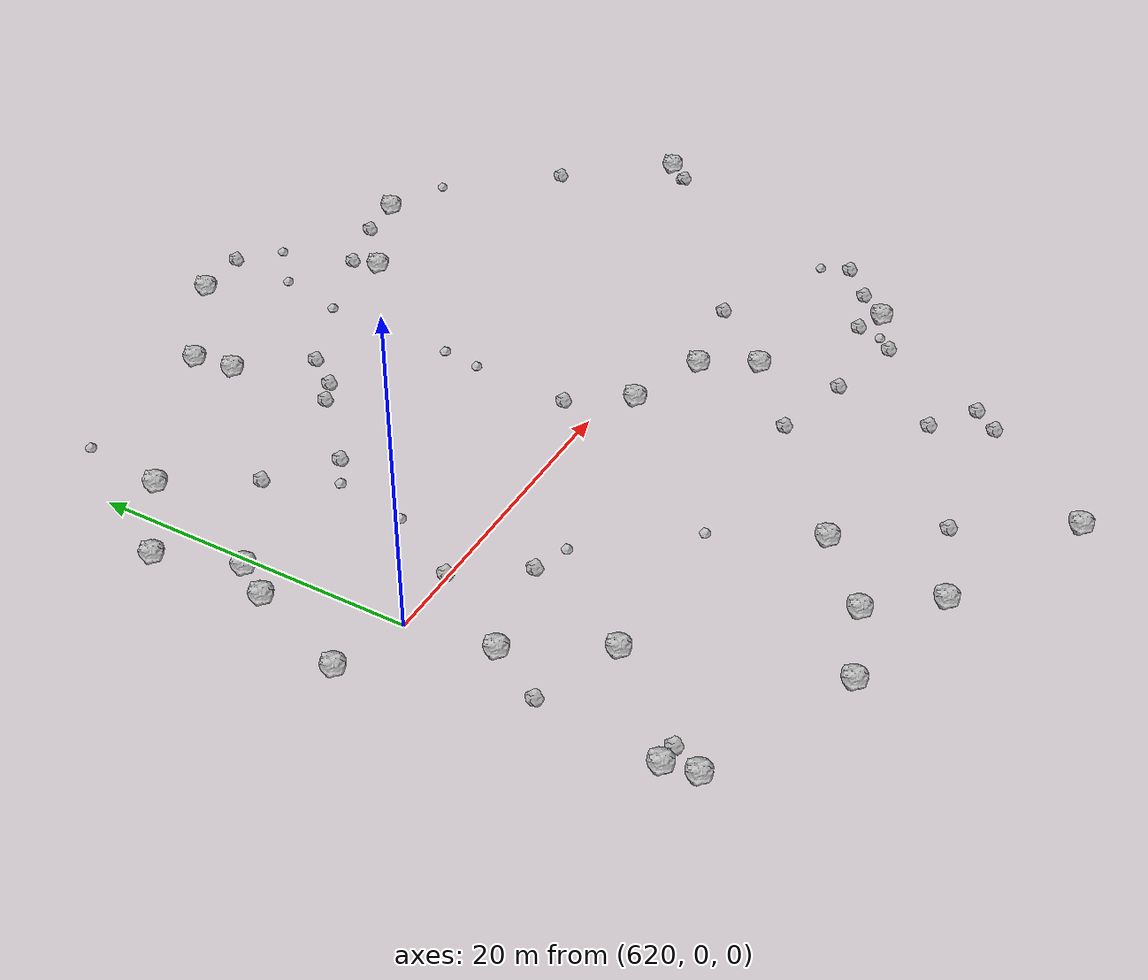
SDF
<sdf version="1.6">
 <world name="default">
  <include><uri>model://sun</uri></include>
  <model name="rock1_16_3">
   <include><uri>model://rock1</uri><pose>653.8089278316353 23.33801840332123 0.5 0 0 0</pose></include>
  </model>
  <model name="rock1_16_4">
   <include><uri>model://rock1</uri><pose>632.9101841639433 -20.504685563201527 0.5 0 0 0</pose></include>
  </model>
  <model name="rock1_16_5">
   <include><uri>model://rock1</uri><pose>637.2851312080411 -16.72430555223564 0.5 0 0 0</pose></include>
  </model>
  <model name="rock1_16_6">
   <include><uri>model://rock1</uri><pose>615.5434850810478 1.347826885919872 0.5 0 0 0</pose></include>
  </model>
  <model name="rock1_16_7">
   <include><uri>model://rock1</uri><pose>633.1457018163671 24.163340697960045 0.5 0 0 0</pose></include>
  </model>
  <model name="rock1_16_8">
   <include><uri>model://rock1</uri><pose>622.4728607712185 18.603124477518655 0.5 0 0 0</pose></include>
  </model>
  <model name="rock1_16_9">
   <include><uri>model://rock1</uri><pose>668.3151160082384 8.92204401249532 0.5 0 0 0</pose></include>
  </model>
  <model name="rock1_16_10">
   <include><uri>model://rock1</uri><pose>627.9747043254084 -22.309270742725865 0.5 0 0 0</pose></include>
  </model>
  <model name="rock1_16_11">
   <include><uri>model://rock1</uri><pose>619.3944644758545 9.997510124827762 0.5 0 0 0</pose></include>
  </model>
  <model name="rock1_16_12">
   <include><uri>model://rock1</uri><pose>620.8025209738443 -5.270229664450877 0.5 0 0 0</pose></include>
  </model>
  <model name="rock1_16_13">
   <include><uri>model://rock1</uri><pose>635.9148893892648 -24.24488800874928 0.5 0 0 0</pose></include>
  </model>
  <model name="rock1_16_14">
   <include><uri>model://rock1</uri><pose>649.9788068850356 -6.55221552645013 0.5 0 0 0</pose></include>
  </model>
  <model name="rock1_16_15">
   <include><uri>model://rock1</uri><pose>645.2383946800703 -28.617658526634962 0.5 0 0 0</pose></include>
  </model>
  <model name="rock1_16_16">
   <include><uri>model://rock1</uri><pose>617.9915937116299 7.75138832134509 0.5 0 0 0</pose></include>
  </model>
  <model name="rock1_16_17">
   <include><uri>model://rock1</uri><pose>647.3649523385862 20.0895431085049 0.5 0 0 0</pose></include>
  </model>
  <model name="rock1_16_18">
   <include><uri>model://rock1</uri><pose>624.0063789818605 -10.766178317635411 0.5 0 0 0</pose></include>
  </model>
  <model name="rock1_16_19">
   <include><uri>model://rock1</uri><pose>643.1527283256254 -1.4914629340363739 0.5 0 0 0</pose></include>
  </model>
  <model name="rock1_16_20">
   <include><uri>model://rock1</uri><pose>639.6323437407618 28.354341313859003 0.5 0 0 0</pose></include>
  </model>
  <model name="rock1_16_21">
   <include><uri>model://rock1</uri><pose>618.076212280438 -16.33386128033507 0.5 0 0 0</pose></include>
  </model>
  <model name="rock1_16_22">
   <include><uri>model://rock1</uri><pose>618.4232196405782 -18.24617288699634 0.5 0 0 0</pose></include>
  </model>
  <model name="rock1_16_23">
   <include><uri>model://rock1</uri><pose>633.4515034099094 21.476135337915565 0.5 0 0 0</pose></include>
  </model>
  <model name="rock1_16_24">
   <include><uri>model://rock1</uri><pose>617.6578820255298 14.92939562856801 0.5 0 0 0</pose></include>
  </model>
  <model name="rock1_16_25">
   <include><uri>model://rock1</uri><pose>648.1471966421226 -3.2592474026928713 0.5 0 0 0</pose></include>
  </model>
  <model name="rock1_16_26">
   <include><uri>model://rock1</uri><pose>658.4233851332009 -11.18351012987332 0.5 0 0 0</pose></include>
  </model>
  <model name="rock2_16_0">
   <include><uri>model://rock2</uri><pose>624.2964743574247 0.153745629980655 0.3 0 0 0</pose></include>
  </model>
  <model name="rock2_16_1">
   <include><uri>model://rock2</uri><pose>659.9900489329389 -9.282328241328461 0.3 0 0 0</pose></include>
  </model>
  <model name="rock2_16_2">
   <include><uri>model://rock2</uri><pose>650.2371048575299 -11.726015823789332 0.3 0 0 0</pose></include>
  </model>
  <model name="rock2_16_3">
   <include><uri>model://rock2</uri><pose>641.3058116904825 -22.27535164732361 0.3 0 0 0</pose></include>
  </model>
  <model name="rock2_16_4">
   <include><uri>model://rock2</uri><pose>645.1008673453002 -10.470061687708835 0.3 0 0 0</pose></include>
  </model>
  <model name="rock2_16_5">
   <include><uri>model://rock2</uri><pose>652.1291856163994 -19.914170946172923 0.3 0 0 0</pose></include>
  </model>
  <model name="rock2_16_6">
   <include><uri>model://rock2</uri><pose>650.7077143408643 23.07146503489878 0.3 0 0 0</pose></include>
  </model>
  <model name="rock2_16_7">
   <include><uri>model://rock2</uri><pose>627.0648677802923 -3.854927578323487 0.3 0 0 0</pose></include>
  </model>
  <model name="rock2_16_8">
   <include><uri>model://rock2</uri><pose>618.7277062915304 -8.735248189440355 0.3 0 0 0</pose></include>
  </model>
  <model name="rock2_16_9">
   <include><uri>model://rock2</uri><pose>635.1488548169668 15.484447382389405 0.3 0 0 0</pose></include>
  </model>
  <model name="rock2_16_10">
   <include><uri>model://rock2</uri><pose>646.9311336500876 21.88811358731226 0.3 0 0 0</pose></include>
  </model>
  <model name="rock2_16_11">
   <include><uri>model://rock2</uri><pose>654.0393661749958 23.765495402857823 0.3 0 0 0</pose></include>
  </model>
  <model name="rock2_16_12">
   <include><uri>model://rock2</uri><pose>656.6005454187557 -10.34659061274002 0.3 0 0 0</pose></include>
  </model>
  <model name="rock2_16_13">
   <include><uri>model://rock2</uri><pose>633.6767322124253 14.737840837462869 0.3 0 0 0</pose></include>
  </model>
  <model name="rock2_16_14">
   <include><uri>model://rock2</uri><pose>662.3064334461717 -7.29046017227283 0.3 0 0 0</pose></include>
  </model>
  <model name="rock2_16_15">
   <include><uri>model://rock2</uri><pose>636.7118865961115 17.61329045423807 0.3 0 0 0</pose></include>
  </model>
  <model name="rock2_16_16">
   <include><uri>model://rock2</uri><pose>625.6978960603801 13.575939303625532 0.3 0 0 0</pose></include>
  </model>
  <model name="rock2_16_17">
   <include><uri>model://rock2</uri><pose>653.9635635893898 -2.1144360471373176 0.3 0 0 0</pose></include>
  </model>
  <model name="rock2_16_18">
   <include><uri>model://rock2</uri><pose>649.3712725750034 -17.91995437978947 0.3 0 0 0</pose></include>
  </model>
  <model name="rock2_16_19">
   <include><uri>model://rock2</uri><pose>655.3254774216052 -12.92790293874215 0.3 0 0 0</pose></include>
  </model>
  <model name="rock2_16_20">
   <include><uri>model://rock2</uri><pose>667.1289211302952 7.447662318877754 0.3 0 0 0</pose></include>
  </model>
  <model name="rock2_16_21">
   <include><uri>model://rock2</uri><pose>663.1628306260791 15.230167187348563 0.3 0 0 0</pose></include>
  </model>
  <model name="rock2_16_22">
   <include><uri>model://rock2</uri><pose>640.7116748538499 2.1547157847949876 0.3 0 0 0</pose></include>
  </model>
  <model name="rock2_16_23">
   <include><uri>model://rock2</uri><pose>629.4816631824534 10.708820820582375 0.3 0 0 0</pose></include>
  </model>
  <model name="rock2_16_24">
   <include><uri>model://rock2</uri><pose>643.2233700667551 28.724388232507472 0.3 0 0 0</pose></include>
  </model>
  <model name="rock2_16_25">
   <include><uri>model://rock2</uri><pose>650.9113779318707 -21.460887967578874 0.3 0 0 0</pose></include>
  </model>
  <model name="rock2_16_26">
   <include><uri>model://rock2</uri><pose>619.371638093552 -16.353793227058976 0.3 0 0 0</pose></include>
  </model>
  <model name="rock3_16_0">
   <include><uri>model://rock3</uri><pose>666.956486595804 7.615850331323905 0.2 0 0 0</pose></include>
  </model>
  <model name="rock3_16_1">
   <include><uri>model://rock3</uri><pose>645.5813935379856 26.591937582441176 0.2 0 0 0</pose></include>
  </model>
  <model name="rock3_16_2">
   <include><uri>model://rock3</uri><pose>634.2655005857578 -10.644880987555009 0.2 0 0 0</pose></include>
  </model>
  <model name="rock3_16_3">
   <include><uri>model://rock3</uri><pose>661.6338774644794 -5.544792250231133 0.2 0 0 0</pose></include>
  </model>
  <model name="rock3_16_4">
   <include><uri>model://rock3</uri><pose>627.745885549736 9.44511060864123 0.2 0 0 0</pose></include>
  </model>
  <model name="rock3_16_5">
   <include><uri>model://rock3</uri><pose>657.8114840326905 21.730329790603754 0.2 0 0 0</pose></include>
  </model>
  <model name="rock3_16_6">
   <include><uri>model://rock3</uri><pose>623.1524963657939 24.041068441472596 0.2 0 0 0</pose></include>
  </model>
  <model name="rock3_16_7">
   <include><uri>model://rock3</uri><pose>641.1406731781885 8.562943449098775 0.2 0 0 0</pose></include>
  </model>
  <model name="rock3_16_8">
   <include><uri>model://rock3</uri><pose>629.3122848881526 -4.611394619698629 0.2 0 0 0</pose></include>
  </model>
  <model name="rock3_16_9">
   <include><uri>model://rock3</uri><pose>641.4937291482062 11.085249260227123 0.2 0 0 0</pose></include>
  </model>
  <model name="rock3_16_10">
   <include><uri>model://rock3</uri><pose>641.8705089244826 19.917631871423893 0.2 0 0 0</pose></include>
  </model>
  <model name="rock3_16_11">
   <include><uri>model://rock3</uri><pose>642.9105197058684 24.196088607378606 0.2 0 0 0</pose></include>
  </model>
  <model name="rock3_16_12">
   <include><uri>model://rock3</uri><pose>626.894320191402 4.774345704296167 0.2 0 0 0</pose></include>
  </model>
  <model name="rock3_16_13">
   <include><uri>model://rock3</uri><pose>656.2347237393866 -11.98921755203941 0.2 0 0 0</pose></include>
  </model>
 </world>
</sdf>
